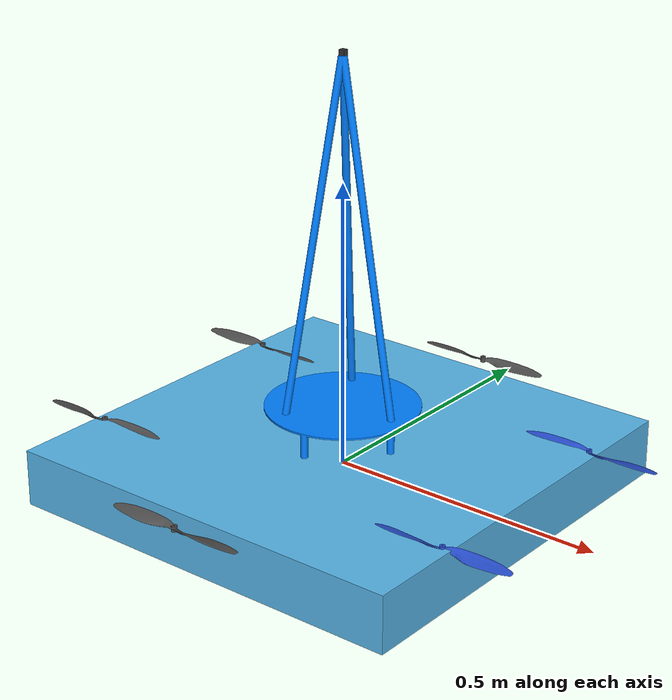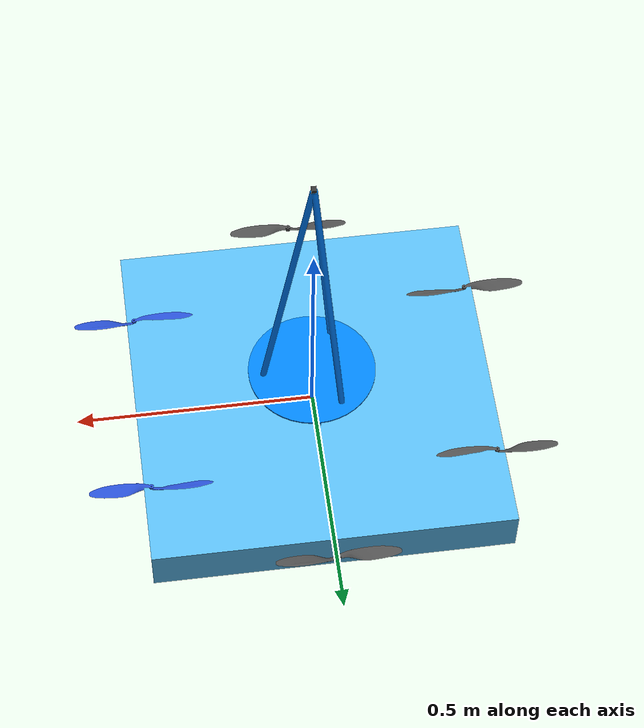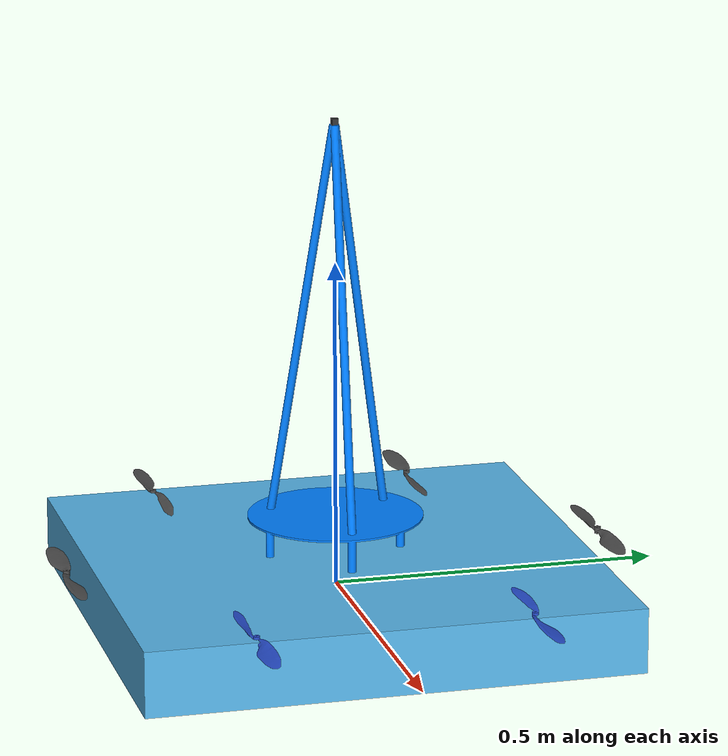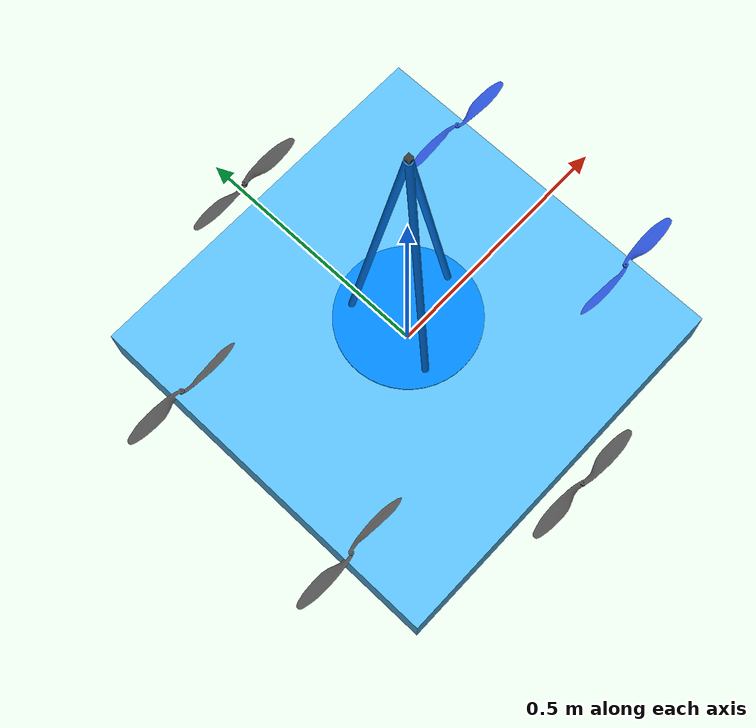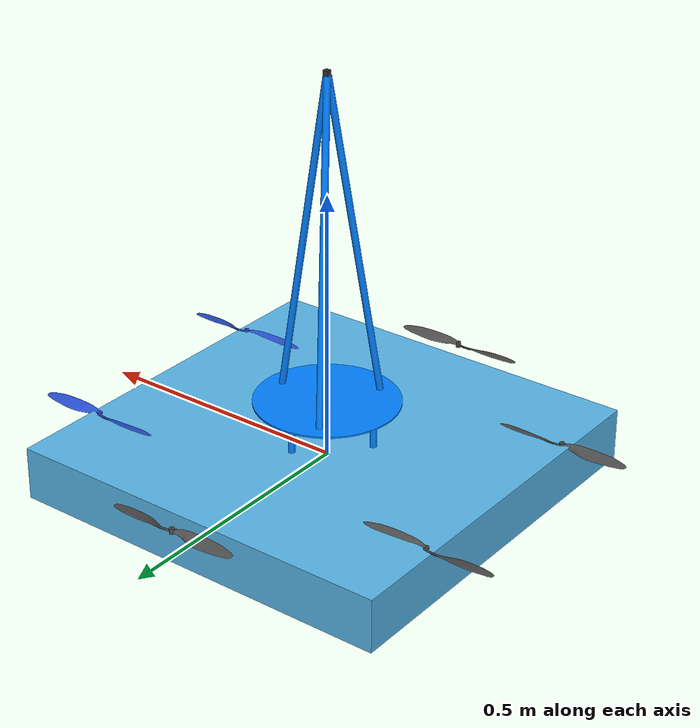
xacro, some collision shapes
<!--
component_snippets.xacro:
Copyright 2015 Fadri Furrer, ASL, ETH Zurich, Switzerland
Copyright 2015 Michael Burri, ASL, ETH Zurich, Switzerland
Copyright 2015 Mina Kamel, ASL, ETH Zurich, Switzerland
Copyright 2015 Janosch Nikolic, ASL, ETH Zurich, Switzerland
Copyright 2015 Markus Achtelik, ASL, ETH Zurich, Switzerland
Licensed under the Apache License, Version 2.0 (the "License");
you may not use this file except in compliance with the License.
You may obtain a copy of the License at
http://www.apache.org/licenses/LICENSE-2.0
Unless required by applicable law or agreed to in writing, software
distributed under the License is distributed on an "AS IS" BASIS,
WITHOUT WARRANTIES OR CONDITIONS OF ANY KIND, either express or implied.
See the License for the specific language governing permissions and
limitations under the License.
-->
<?xml version="1.0"?>

<robot name="carrier" xmlns:xacro="http://ros.org/wiki/xacro">
  <!-- Properties that can be assigned at build time as arguments.
  Is there a reason not to make all properties arguments?
  -->
  <xacro:arg name='name' default='carrier' />
  <xacro:arg name='mavlink_addr' default='INADDR_ANY' />
  <xacro:arg name='mavlink_udp_port' default='14561' />
  <xacro:arg name='mavlink_tcp_port' default='4562' />
  <xacro:arg name='serial_enabled' default='false' />
  <xacro:arg name='serial_device' default='/dev/ttyACM0' />
  <xacro:arg name='baudrate' default='921600' />
  <xacro:arg name='qgc_addr' default='INADDR_ANY' />
  <xacro:arg name='qgc_udp_port' default='14550' />
  <xacro:arg name='sdk_addr' default='INADDR_ANY' />
  <xacro:arg name='sdk_udp_port' default='14540' />
  <xacro:arg name='hil_mode' default='false' />
  <xacro:arg name='hil_state_level' default='false' />
  <xacro:arg name='send_vision_estimation' default='false' />
  <xacro:arg name='send_odometry' default='false' />
  <xacro:arg name='enable_lockstep' default='true' />
  <xacro:arg name='use_tcp' default='true' />
  <xacro:arg name='vehicle_is_tailsitter' default='false' />
  <xacro:arg name='visual_material' default='DarkGrey' />
  <xacro:arg name='enable_mavlink_interface' default='true' />

  <!-- macros for gazebo plugins, sensors -->
  <xacro:include filename="$(find docking_description)/urdf/component_snippets.xacro" />

  <!-- Instantiate "mechanics" -->
  <xacro:include filename="$(find docking_description)/urdf/$(arg name).xacro" />

  <!-- Instantiate gps plugin. -->
  <xacro:gps_plugin_macro
    namespace="${namespace}"
    gps_noise="true"
    >
  </xacro:gps_plugin_macro>

  <!-- Instantiate magnetometer plugin. -->
  <xacro:magnetometer_plugin_macro
    namespace="${namespace}"
    pub_rate="20"
    noise_density="0.0004"
    random_walk="0.0000064"
    bias_correlation_time="600"
    mag_topic="/mag"
    >
  </xacro:magnetometer_plugin_macro>

  <!-- Instantiate barometer plugin. -->
  <xacro:barometer_plugin_macro
    namespace="${namespace}"
    pub_rate="10"
    baro_topic="/baro"
    >
  </xacro:barometer_plugin_macro>

  <xacro:if value="$(arg enable_mavlink_interface)">
  <!-- Instantiate mavlink telemetry interface. -->
  <xacro:mavlink_interface_macro
    namespace="${namespace}"
    imu_sub_topic="/imu"
    gps_sub_topic="/gps"
    mag_sub_topic="/mag"
    baro_sub_topic="/baro"
    mavlink_addr="$(arg mavlink_addr)"
    mavlink_udp_port="$(arg mavlink_udp_port)"
    mavlink_tcp_port="$(arg mavlink_tcp_port)"
    serial_enabled="$(arg serial_enabled)"
    serial_device="$(arg serial_device)"
    baudrate="$(arg baudrate)"
    qgc_addr="$(arg qgc_addr)"
    qgc_udp_port="$(arg qgc_udp_port)"
    sdk_addr="$(arg sdk_addr)"
    sdk_udp_port="$(arg sdk_udp_port)"
    hil_mode="$(arg hil_mode)"
    hil_state_level="$(arg hil_state_level)"
    vehicle_is_tailsitter="$(arg vehicle_is_tailsitter)"
    send_vision_estimation="$(arg send_vision_estimation)"
    send_odometry="$(arg send_odometry)"
    enable_lockstep="$(arg enable_lockstep)"
    use_tcp="$(arg use_tcp)"
    >
  </xacro:mavlink_interface_macro>
  </xacro:if>

  <!-- Mount an ADIS16448 IMU. -->
  <xacro:imu_plugin_macro
    namespace="${namespace}"
    imu_suffix=""
    parent_link="${namespace}/base_link"
    imu_topic="/imu"
    mass_imu_sensor="0.015"
    gyroscope_noise_density="0.0003394"
    gyroscopoe_random_walk="0.000038785"
    gyroscope_bias_correlation_time="1000.0"
    gyroscope_turn_on_bias_sigma="0.0087"
    accelerometer_noise_density="0.004"
    accelerometer_random_walk="0.006"
    accelerometer_bias_correlation_time="300.0"
    accelerometer_turn_on_bias_sigma="0.1960"
  >
    <inertia ixx="0.00001" ixy="0.0" ixz="0.0" iyy="0.00001" iyz="0.0" izz="0.00001" />
    <origin xyz="0 0 0" rpy="0 0 0" />
  </xacro:imu_plugin_macro>

</robot>

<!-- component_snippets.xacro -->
<robot xmlns:xacro="http://ros.org/wiki/xacro">
  <!-- Macro to add logging to a bag file. -->
  <xacro:macro name="bag_plugin_macro"
    params="namespace bag_file rotor_velocity_slowdown_sim">
    <gazebo>
      <plugin filename="librotors_gazebo_bag_plugin.so" name="rosbag">
        <robotNamespace>${namespace}</robotNamespace>
        <bagFileName>${bag_file}</bagFileName>
        <linkName>base_link</linkName>
        <frameId>base_link</frameId>
        <commandAttitudeThrustSubTopic>command/attitude</commandAttitudeThrustSubTopic>
        <commandAttitudeThrustPubTopic>command/attitude</commandAttitudeThrustPubTopic>
        <rotorVelocitySlowdownSim>${rotor_velocity_slowdown_sim}</rotorVelocitySlowdownSim>
      </plugin>
    </gazebo>
  </xacro:macro>

  <!-- Macro to add a camera. -->
  <xacro:macro name="camera_macro"
    params="namespace parent_link camera_suffix frame_rate
      horizontal_fov image_width image_height image_format min_distance
      max_distance noise_mean noise_stddev enable_visual *cylinder *origin">
    <link name="${namespace}/camera_${camera_suffix}_link">
      <collision>
        <origin xyz="0 0 0" rpy="0 0 0" />
        <geometry>
          <xacro:insert_block name="cylinder" />
        </geometry>
      </collision>
      <xacro:if value="${enable_visual}">
        <visual>
          <origin xyz="0 0 0" rpy="0 1.57079632679 0" />
          <geometry>
            <xacro:insert_block name="cylinder" />
          </geometry>
          <material name="red" />
        </visual>
      </xacro:if>
      <inertial>
        <mass value="1e-5" />
        <origin xyz="0 0 0" rpy="0 0 0" />
        <inertia ixx="1e-6" ixy="0" ixz="0" iyy="1e-6" iyz="0" izz="1e-6" />
      </inertial>
    </link>
    <joint name="${namespace}/camera_${camera_suffix}_joint" type="fixed">
      <xacro:insert_block name="origin" />
      <parent link="${parent_link}" />
      <child link="${namespace}/camera_${camera_suffix}_link" />
    </joint>
    <gazebo reference="${namespace}/camera_${camera_suffix}_link">
      <sensor type="camera" name="${namespace}_camera_${camera_suffix}">
        <update_rate>${frame_rate}</update_rate>
        <camera name="head">
          <horizontal_fov>${horizontal_fov}</horizontal_fov>
          <image>
            <width>${image_width}</width>
            <height>${image_height}</height>
            <format>${image_format}</format>
          </image>
          <clip>
            <near>${min_distance}</near>
            <far>${max_distance}</far>
          </clip>
          <noise>
            <type>gaussian</type>
            <!-- Noise is sampled independently per pixel on each frame.
                 That pixel's noise value is added to each of its color
                 channels, which at that point lie in the range [0,1]. -->
            <mean>${noise_mean}</mean>
            <stddev>${noise_stddev}</stddev>
          </noise>
        </camera>
        <plugin name="${namespace}_camera_${camera_suffix}_controller" filename="libgazebo_ros_camera.so">
          <robotNamespace>${namespace}</robotNamespace>
          <alwaysOn>true</alwaysOn>
          <updateRate>${frame_rate}</updateRate>
          <cameraName>camera_${camera_suffix}</cameraName>
          <imageTopicName>image_raw</imageTopicName>
          <cameraInfoTopicName>camera_info</cameraInfoTopicName>
          <frameName>camera_${camera_suffix}_link</frameName>
          <hackBaseline>0.0</hackBaseline>
          <distortionK1>0.0</distortionK1>
          <distortionK2>0.0</distortionK2>
          <distortionK3>0.0</distortionK3>
          <distortionT1>0.0</distortionT1>
          <distortionT2>0.0</distortionT2>
        </plugin>
      </sensor>
    </gazebo>
  </xacro:macro>

  <!-- Macro to add the controller interface. -->
  <xacro:macro name="controller_plugin_macro" params="namespace imu_sub_topic">
    <gazebo>
      <plugin name="controller_interface" filename="libgazebo_controller_interface.so">
        <robotNamespace>${namespace}</robotNamespace>
        <commandAttitudeThrustSubTopic>/command/attitude</commandAttitudeThrustSubTopic>
        <commandRateThrustSubTopic>/command/rate</commandRateThrustSubTopic>
        <commandMotorSpeedSubTopic>/command/motor_speed</commandMotorSpeedSubTopic>
        <imuSubTopic>/${imu_sub_topic}</imuSubTopic>
        <motorSpeedCommandPubTopic>/gazebo/command/motor_speed</motorSpeedCommandPubTopic>
      </plugin>
    </gazebo>
  </xacro:macro>

  <!-- Macro to add the gps_plugin. -->
  <xacro:macro name="gps_plugin_macro" params="namespace gps_noise">
    <gazebo>
      <plugin name="gps_plugin" filename="libgazebo_gps_plugin.so">
        <robotNamespace>${namespace}</robotNamespace>
        <gpsNoise>${gps_noise}</gpsNoise>
      </plugin>
    </gazebo>
  </xacro:macro>

  <!-- Macro to add the magnetometer_plugin. -->
  <xacro:macro name="magnetometer_plugin_macro" params="namespace pub_rate noise_density random_walk bias_correlation_time mag_topic">
    <gazebo>
      <plugin name="magnetometer_plugin" filename="libgazebo_magnetometer_plugin.so">
        <robotNamespace>${namespace}</robotNamespace>
        <pubRate>${pub_rate}</pubRate>
        <noiseDensity>${noise_density}</noiseDensity>
        <randomWalk>${random_walk}</randomWalk>
        <biasCorrelationTime>${bias_correlation_time}</biasCorrelationTime>
        <magTopic>${mag_topic}</magTopic>
      </plugin>
    </gazebo>
  </xacro:macro>

  <!-- Macro to add the barometer_plugin. -->
  <xacro:macro name="barometer_plugin_macro" params="namespace pub_rate baro_topic">
    <gazebo>
      <plugin name="barometer_plugin" filename="libgazebo_barometer_plugin.so">
        <robotNamespace>${namespace}</robotNamespace>
        <pubRate>${pub_rate}</pubRate>
        <baroTopic>${baro_topic}</baroTopic>
      </plugin>
    </gazebo>
  </xacro:macro>

  <!-- Macro to add the mavlink interface. -->
  <xacro:macro name="mavlink_interface_macro" params="namespace imu_sub_topic gps_sub_topic mag_sub_topic baro_sub_topic mavlink_addr mavlink_udp_port mavlink_tcp_port serial_enabled serial_device baudrate qgc_addr qgc_udp_port sdk_addr sdk_udp_port hil_mode hil_state_level vehicle_is_tailsitter send_vision_estimation send_odometry enable_lockstep use_tcp">
    <gazebo>
      <plugin name="mavlink_interface" filename="libgazebo_mavlink_interface.so">
        <robotNamespace>${namespace}</robotNamespace>
        <imuSubTopic>${imu_sub_topic}</imuSubTopic>
        <gpsSubTopic>${gps_sub_topic}</gpsSubTopic>
        <magSubTopic>${mag_sub_topic}</magSubTopic>
        <baroSubTopic>${baro_sub_topic}</baroSubTopic>
        <mavlink_addr>$(arg mavlink_addr)</mavlink_addr>
        <mavlink_udp_port>$(arg mavlink_udp_port)</mavlink_udp_port>
        <mavlink_tcp_port>$(arg mavlink_tcp_port)</mavlink_tcp_port>
        <serialEnabled>$(arg serial_enabled)</serialEnabled>
        <serialDevice>$(arg serial_device)</serialDevice>
        <baudRate>$(arg baudrate)</baudRate>
        <qgc_addr>$(arg qgc_addr)</qgc_addr>
        <qgc_udp_port>$(arg qgc_udp_port)</qgc_udp_port>
        <sdk_addr>$(arg sdk_addr)</sdk_addr>
        <sdk_udp_port>$(arg sdk_udp_port)</sdk_udp_port>
        <hil_mode>$(arg hil_mode)</hil_mode>
        <hil_state_level>$(arg hil_state_level)</hil_state_level>
        <vehicle_is_tailsitter>$(arg vehicle_is_tailsitter)</vehicle_is_tailsitter>
        <send_vision_estimation>$(arg send_vision_estimation)</send_vision_estimation>
        <send_odometry>$(arg send_odometry)</send_odometry>
        <enable_lockstep>$(arg enable_lockstep)</enable_lockstep>
        <use_tcp>$(arg use_tcp)</use_tcp>
        <motorSpeedCommandPubTopic>/gazebo/command/motor_speed</motorSpeedCommandPubTopic>
        <control_channels>
          <channel name="rotor1">
            <input_index>0</input_index>
            <input_offset>0</input_offset>
            <input_scaling>1000</input_scaling>
            <zero_position_disarmed>0</zero_position_disarmed>
            <zero_position_armed>100</zero_position_armed>
            <joint_control_type>velocity</joint_control_type>
          </channel>
          <channel name="rotor2">
            <input_index>1</input_index>
            <input_offset>0</input_offset>
            <input_scaling>1000</input_scaling>
            <zero_position_disarmed>0</zero_position_disarmed>
            <zero_position_armed>100</zero_position_armed>
            <joint_control_type>velocity</joint_control_type>
          </channel>
          <channel name="rotor3">
            <input_index>2</input_index>
            <input_offset>0</input_offset>
            <input_scaling>1000</input_scaling>
            <zero_position_disarmed>0</zero_position_disarmed>
            <zero_position_armed>100</zero_position_armed>
            <joint_control_type>velocity</joint_control_type>
          </channel>
          <channel name="rotor4">
            <input_index>3</input_index>
            <input_offset>0</input_offset>
            <input_scaling>1000</input_scaling>
            <zero_position_disarmed>0</zero_position_disarmed>
            <zero_position_armed>100</zero_position_armed>
            <joint_control_type>velocity</joint_control_type>
          </channel>
          <channel name="rotor5">
            <input_index>4</input_index>
            <input_offset>0</input_offset>
            <input_scaling>1000</input_scaling>
            <zero_position_disarmed>0</zero_position_disarmed>
            <zero_position_armed>100</zero_position_armed>
            <joint_control_type>velocity</joint_control_type>
          </channel>
          <channel name="rotor6">
            <input_index>5</input_index>
            <input_offset>0</input_offset>
            <input_scaling>1000</input_scaling>
            <zero_position_disarmed>0</zero_position_disarmed>
            <zero_position_armed>100</zero_position_armed>
            <joint_control_type>velocity</joint_control_type>
          </channel>
          <channel name="rotor7">
            <input_index>6</input_index>
            <input_offset>1</input_offset>
            <input_scaling>324.6</input_scaling>
            <zero_position_disarmed>0</zero_position_disarmed>
            <zero_position_armed>0</zero_position_armed>
            <joint_control_type>velocity</joint_control_type>
            <joint_control_pid>
              <p>0.1</p>
              <i>0</i>
              <d>0</d>
              <iMax>0.0</iMax>
              <iMin>0.0</iMin>
              <cmdMax>2</cmdMax>
              <cmdMin>-2</cmdMin>
            </joint_control_pid>
            <joint_name>zephyr_delta_wing::propeller_joint</joint_name>
          </channel>
          <channel name="rotor8">
            <input_index>7</input_index>
            <input_offset>0</input_offset>
            <!-- joint limits [-0.524, 0.524] -->
            <input_scaling>0.524</input_scaling>
            <zero_position_disarmed>0</zero_position_disarmed>
            <zero_position_armed>0</zero_position_armed>
            <joint_control_type>position</joint_control_type>
            <joint_name>zephyr_delta_wing::flap_left_joint</joint_name>
            <joint_control_pid>
              <p>10.0</p>
              <i>0</i>
              <d>0</d>
              <iMax>0</iMax>
              <iMin>0</iMin>
              <cmdMax>20</cmdMax>
              <cmdMin>-20</cmdMin>
            </joint_control_pid>
          </channel>
          <channel name="rotor9">
            <input_index>8</input_index>
            <input_offset>0</input_offset>
            <!-- joint limits [-0.524, 0.524] -->
            <input_scaling>0.524</input_scaling>
            <zero_position_disarmed>0</zero_position_disarmed>
            <zero_position_armed>0</zero_position_armed>
            <joint_control_type>position</joint_control_type>
            <joint_name>zephyr_delta_wing::flap_right_joint</joint_name>
            <joint_control_pid>
              <p>10.0</p>
              <i>0</i>
              <d>0</d>
              <iMax>0</iMax>
              <iMin>0</iMin>
              <cmdMax>20</cmdMax>
              <cmdMin>-20</cmdMin>
            </joint_control_pid>
          </channel>
          <channel name="rotor10">
            <input_index>9</input_index>
            <input_offset>0</input_offset>
            <input_scaling>0.524</input_scaling>
            <zero_position_disarmed>0</zero_position_disarmed>
            <zero_position_armed>0</zero_position_armed>
            <joint_control_type>position</joint_control_type>
          </channel>
        </control_channels>
      </plugin>
    </gazebo>
  </xacro:macro>

  <!-- Macro to add an IMU. -->
  <xacro:macro name="imu_plugin_macro"
    params="namespace imu_suffix parent_link imu_topic
      mass_imu_sensor gyroscope_noise_density gyroscopoe_random_walk
      gyroscope_bias_correlation_time gyroscope_turn_on_bias_sigma
      accelerometer_noise_density accelerometer_random_walk
      accelerometer_bias_correlation_time accelerometer_turn_on_bias_sigma
      *inertia *origin">
    <!-- IMU link -->
    <link name="${namespace}/imu${imu_suffix}_link">
      <inertial>
        <xacro:insert_block name="inertia" />
        <mass value="${mass_imu_sensor}" />  <!-- [kg] -->
        <origin xyz="0 0 0" rpy="0 0 0" />
      </inertial>
    </link>
    <!-- IMU joint -->
    <joint name="${namespace}/imu${imu_suffix}_joint" type="revolute">
      <xacro:insert_block name="origin" />
      <parent link="${parent_link}" />
      <child link="${namespace}/imu${imu_suffix}_link" />
      <limit upper="0" lower="0" effort="0" velocity="0" />
    </joint>
    <gazebo>
      <plugin filename="libgazebo_imu_plugin.so" name="rotors_gazebo_imu${imu_suffix}_plugin">
      <!-- A good description of the IMU parameters can be found in the kalibr documentation:
           https://github.com/ethz-asl/kalibr/wiki/IMU-Noise-Model-and-Intrinsics -->
        <robotNamespace>${namespace}</robotNamespace> <!-- (string, required): ros namespace in which the messages are published -->
        <linkName>${namespace}/imu${imu_suffix}_link</linkName> <!-- (string, required): name of the body which holds the IMU sensor -->
        <imuTopic>${imu_topic}</imuTopic> <!-- (string): name of the sensor output topic and prefix of service names (defaults to imu) -->
        <gyroscopeNoiseDensity>${gyroscope_noise_density}</gyroscopeNoiseDensity> <!-- Gyroscope noise density (two-sided spectrum) [rad/s/sqrt(Hz)] -->
        <gyroscopeRandomWalk>${gyroscopoe_random_walk}</gyroscopeRandomWalk> <!-- Gyroscope bias random walk [rad/s/s/sqrt(Hz)] -->
        <gyroscopeBiasCorrelationTime>${gyroscope_bias_correlation_time}</gyroscopeBiasCorrelationTime> <!-- Gyroscope bias correlation time constant [s] -->
        <gyroscopeTurnOnBiasSigma>${gyroscope_turn_on_bias_sigma}</gyroscopeTurnOnBiasSigma> <!-- Gyroscope turn on bias standard deviation [rad/s] -->
        <accelerometerNoiseDensity>${accelerometer_noise_density}</accelerometerNoiseDensity> <!-- Accelerometer noise density (two-sided spectrum) [m/s^2/sqrt(Hz)] -->
        <accelerometerRandomWalk>${accelerometer_random_walk}</accelerometerRandomWalk> <!-- Accelerometer bias random walk. [m/s^2/s/sqrt(Hz)] -->
        <accelerometerBiasCorrelationTime>${accelerometer_bias_correlation_time}</accelerometerBiasCorrelationTime> <!-- Accelerometer bias correlation time constant [s] -->
        <accelerometerTurnOnBiasSigma>${accelerometer_turn_on_bias_sigma}</accelerometerTurnOnBiasSigma> <!-- Accelerometer turn on bias standard deviation [m/s^2] -->
      </plugin>
    </gazebo>
  </xacro:macro>

<!-- Macro to add a generic odometry sensor. -->
  <xacro:macro name="odometry_plugin_macro"
    params="
      namespace odometry_sensor_suffix parent_link pose_topic pose_with_covariance_topic
      position_topic transform_topic odometry_topic parent_frame_id
      mass_odometry_sensor measurement_divisor measurement_delay unknown_delay
      noise_normal_position noise_normal_quaternion noise_normal_linear_velocity
      noise_normal_angular_velocity noise_uniform_position
      noise_uniform_quaternion noise_uniform_linear_velocity
      noise_uniform_angular_velocity enable_odometry_map odometry_map
      image_scale *inertia *origin">
    <!-- odometry link -->
    <link name="${namespace}/odometry_sensor${odometry_sensor_suffix}_link">
      <inertial>
        <xacro:insert_block name="inertia" />
        <mass value="${mass_odometry_sensor}" />  <!-- [kg] -->
      </inertial>
    </link>
    <!-- odometry joint -->
    <joint name="${namespace}/odometry_sensor${odometry_sensor_suffix}_joint" type="revolute">
      <parent link="${parent_link}" />
      <xacro:insert_block name="origin" />
      <child link="${namespace}/odometry_sensor${odometry_sensor_suffix}_link" />
      <limit upper="0" lower="0" effort="0" velocity="0" />
    </joint>
    <gazebo>
      <plugin filename="librotors_gazebo_odometry_plugin.so" name="odometry_sensor${odometry_sensor_suffix}">
        <linkName>${namespace}/odometry_sensor${odometry_sensor_suffix}_link</linkName>
        <robotNamespace>${namespace}</robotNamespace>
        <poseTopic>${pose_topic}</poseTopic>
        <poseWithCovarianceTopic>${pose_with_covariance_topic}</poseWithCovarianceTopic>
        <positionTopic>${position_topic}</positionTopic>
        <transformTopic>${transform_topic}</transformTopic>
        <odometryTopic>${odometry_topic}</odometryTopic>
        <parentFrameId>${parent_frame_id}</parentFrameId>  <!-- Use the scoped link name here. e.g. Model::link. -->
        <measurementDivisor>${measurement_divisor}</measurementDivisor> <!-- only every (seq % measurementDivisor) == 0 measurement is published [int] -->
        <measurementDelay>${measurement_delay}</measurementDelay> <!-- time that measurement gets held back before it's published in [simulation cycles (int)] -->
        <unknownDelay>${unknown_delay}</unknownDelay> <!-- additional delay, that just gets added to the timestamp [s] -->
        <noiseNormalPosition>${noise_normal_position}</noiseNormalPosition> <!-- standard deviation of additive white gaussian noise [m] -->
        <noiseNormalQuaternion>${noise_normal_quaternion}</noiseNormalQuaternion> <!-- standard deviation white gaussian noise [rad]: q_m = q*quaternionFromSmallAngleApproximation(noiseNormalQ) -->
        <noiseNormalLinearVelocity>${noise_normal_linear_velocity}</noiseNormalLinearVelocity> <!-- standard deviation of additive white gaussian noise [m/s] -->
        <noiseNormalAngularVelocity>${noise_normal_angular_velocity}</noiseNormalAngularVelocity> <!-- standard deviation of additive white gaussian noise [rad/s] -->
        <noiseUniformPosition>${noise_uniform_position}</noiseUniformPosition> <!-- symmetric bounds of uniform noise [m] -->
        <noiseUniformQuaternion>${noise_uniform_quaternion}</noiseUniformQuaternion> <!-- symmetric bounds of uniform noise [rad], computation see above -->
        <noiseUniformLinearVelocity>${noise_uniform_linear_velocity}</noiseUniformLinearVelocity>  <!-- symmetric bounds of uniform noise [m/s] -->
        <noiseUniformAngularVelocity>${noise_uniform_angular_velocity}</noiseUniformAngularVelocity>  <!-- symmetric bounds of uniform noise [rad/s] -->
        <xacro:if value="${enable_odometry_map}">
          <covarianceImage>package://rotors_gazebo/resource/${odometry_map}</covarianceImage>
          <covarianceImageScale>${image_scale}</covarianceImageScale>
        </xacro:if>
      </plugin>
    </gazebo>
  </xacro:macro>

  <!-- Macro to add the wind plugin. -->
  <xacro:macro name="wind_plugin_macro"
    params="namespace xyz_offset wind_direction wind_force_mean
      wind_gust_direction wind_gust_duration wind_gust_start
      wind_gust_force_mean">
    <gazebo>
      <plugin filename="libgazebo_wind_plugin.so" name="wind_plugin">
        <frameId>base_link</frameId>
        <linkName>base_link</linkName>
        <robotNamespace>${namespace}</robotNamespace>
        <xyzOffset>${xyz_offset}</xyzOffset>
        <windDirection>${wind_direction}</windDirection>
        <windForceMean>${wind_force_mean}</windForceMean>
        <windGustDirection>${wind_gust_direction}</windGustDirection>
        <windGustDuration>${wind_gust_duration}</windGustDuration>
        <windGustStart>${wind_gust_start}</windGustStart>
        <windGustForceMean>${wind_gust_force_mean}</windGustForceMean>
      </plugin>
    </gazebo>
  </xacro:macro>

  <!-- VI sensor macros -->
  <!-- Macro to add a VI-sensor camera. -->
  <xacro:macro name="vi_sensor_camera_macro"
    params="namespace parent_link camera_suffix frame_rate *origin">
    <xacro:camera_macro
      namespace="${namespace}"
      parent_link="${parent_link}"
      camera_suffix="${camera_suffix}"
      frame_rate="${frame_rate}"
      horizontal_fov="1.3962634"
      image_width="752"
      image_height="480"
      image_format="L8"
      min_distance="0.02"
      max_distance="30"
      noise_mean="0.0"
      noise_stddev="0.007"
      enable_visual="false">
      <cylinder length="0.01" radius="0.007" />
      <xacro:insert_block name="origin" />
    </xacro:camera_macro>
  </xacro:macro>

  <!-- Macro to add a depth camera on the VI-sensor. -->
  <xacro:macro name="vi_sensor_depth_macro"
    params="namespace parent_link camera_suffix frame_rate *origin">
    <link name="${namespace}/camera_${camera_suffix}_link">
      <collision>
        <origin xyz="0 0 0" rpy="0 0 0" />
        <geometry>
          <cylinder length="0.01" radius="0.007" />
        </geometry>
      </collision>
      <inertial>
        <mass value="1e-5" />
        <origin xyz="0 0 0" rpy="0 0 0" />
        <inertia ixx="1e-6" ixy="0" ixz="0" iyy="1e-6" iyz="0" izz="1e-6" />
      </inertial>
    </link>
    <joint name="${namespace}/camera_${camera_suffix}_joint" type="fixed">
      <xacro:insert_block name="origin" />
      <parent link="${parent_link}" />
      <child link="${namespace}/camera_${camera_suffix}_link" />
      <limit upper="0" lower="0" effort="0" velocity="0" />
    </joint>
    <!-- Optical center of camera -->
    <link name="${namespace}/camera_${camera_suffix}_optical_center_link" />
    <joint name="${namespace}/camera_${camera_suffix}_optical_center_joint" type="fixed">
      <origin xyz="0 0 0" rpy="${-PI/2} 0 ${-PI/2}" />
      <parent link="${namespace}/camera_${camera_suffix}_link" />
      <child link="${namespace}/camera_${camera_suffix}_optical_center_link" />
      <limit upper="0" lower="0" effort="0" velocity="0" />
    </joint>
    <gazebo reference="${namespace}/camera_${camera_suffix}_link">
      <sensor type="depth" name="${namespace}_camera_{camera_suffix}">
        <always_on>true</always_on>
        <update_rate>${frame_rate}</update_rate>
        <camera>
          <horizontal_fov>2</horizontal_fov>
          <image>
            <format>L8</format>
            <width>640</width>
            <height>480</height>
          </image>
          <clip>
            <near>0.01</near>
            <far>100</far>
          </clip>
        </camera>
        <plugin name="${namespace}_camera_{camera_suffix}" filename="libgazebo_ros_openni_kinect.so">
          <robotNamespace>${namespace}</robotNamespace>
          <alwaysOn>true</alwaysOn>
          <baseline>0.11</baseline>
          <updateRate>${frame_rate}</updateRate>
          <cameraName>camera_${camera_suffix}</cameraName>
          <imageTopicName>camera/image_raw</imageTopicName>
          <cameraInfoTopicName>camera/camera_info</cameraInfoTopicName>
          <depthImageTopicName>depth/disparity</depthImageTopicName>
          <depthImageCameraInfoTopicName>depth/camera_info</depthImageCameraInfoTopicName>
          <pointCloudTopicName>depth/points</pointCloudTopicName>
          <frameName>camera_${camera_suffix}_optical_center_link</frameName>
          <pointCloudCutoff>0.5</pointCloudCutoff>
          <distortionK1>0.0</distortionK1>
          <distortionK2>0.0</distortionK2>
          <distortionK3>0.0</distortionK3>
          <distortionT1>0.0</distortionT1>
          <distortionT2>0.0</distortionT2>
        </plugin>
      </sensor>
    </gazebo>
  </xacro:macro>

  <!-- VI-Sensor Macro -->
  <xacro:macro name="vi_sensor_macro" params="namespace parent_link *origin">
    <!-- Vi Sensor Link -->
    <link name="${namespace}/vi_sensor_link">
      <collision>
        <origin xyz="0 0 0" rpy="0 0 0" />
        <geometry>
          <box size="0.03 0.133 0.057" />
        </geometry>
      </collision>

      <visual>
        <origin xyz="0 0 0" rpy="0 0 0" />
        <geometry>
          <mesh filename="package://rotors_description/meshes/vi_sensor.dae" scale="1 1 1" />
        </geometry>
      </visual>

      <inertial>
        <mass value="0.13" />
        <origin xyz="0 0 0" rpy="0 0 0" />
        <inertia ixx="1e-6" ixy="0" ixz="0" iyy="1e-6" iyz="0" izz="1e-6" />
      </inertial>
    </link>
    <joint name="{namespace}_vi_sensor_joint" type="fixed">
      <xacro:insert_block name="origin" />
      <parent link="${parent_link}" />
      <child link="${namespace}/vi_sensor_link" />
    </joint>
    <!-- Cameras -->
    <xacro:if value="$(arg enable_cameras)">
      <!-- Left Camera -->
      <xacro:vi_sensor_camera_macro
        namespace="${namespace}" parent_link="${namespace}/vi_sensor_link"
        camera_suffix="left" frame_rate="30.0">
        <origin xyz="0.015 0.055 0.0065" rpy="0 0 0" />
      </xacro:vi_sensor_camera_macro>
      <!-- Right Camera -->
      <xacro:vi_sensor_camera_macro namespace="${namespace}"
        parent_link="${namespace}/vi_sensor_link"
        camera_suffix="right" frame_rate="30.0">
        <origin xyz="0.015 -0.055 0.0065" rpy="0 0 0" />
      </xacro:vi_sensor_camera_macro>
    </xacro:if>

    <!-- Depth Sensor -->
    <xacro:if value="$(arg enable_depth)">
      <xacro:vi_sensor_depth_macro
        namespace="${namespace}" parent_link="${namespace}/vi_sensor_link"
        camera_suffix="depth" frame_rate="30.0">
        <origin xyz="0.015 0.055 0.0065" rpy="0 0 0" />
      </xacro:vi_sensor_depth_macro>
    </xacro:if>

    <!-- Groundtruth -->
    <xacro:if value="$(arg enable_ground_truth)">
      <!-- Odometry Sensor -->
      <xacro:odometry_plugin_macro
        namespace="${namespace}/ground_truth"
        odometry_sensor_suffix=""
        parent_link="${namespace}/vi_sensor_link"
        pose_topic="pose"
        pose_with_covariance_topic="pose_with_covariance"
        position_topic="position"
        transform_topic="transform"
        odometry_topic="odometry"
        parent_frame_id="world"
        mass_odometry_sensor="0.00001"
        measurement_divisor="1"
        measurement_delay="0"
        unknown_delay="0.0"
        noise_normal_position="0 0 0"
        noise_normal_quaternion="0 0 0"
        noise_normal_linear_velocity="0 0 0"
        noise_normal_angular_velocity="0 0 0"
        noise_uniform_position="0 0 0"
        noise_uniform_quaternion="0 0 0"
        noise_uniform_linear_velocity="0 0 0"
        noise_uniform_angular_velocity="0 0 0"
        enable_odometry_map="false"
        odometry_map=""
        image_scale="">
        <inertia ixx="0.00001" ixy="0.0" ixz="0.0" iyy="0.00001" iyz="0.0" izz="0.00001" /> <!-- [kg.m^2] [kg.m^2] [kg.m^2] [kg.m^2] [kg.m^2] [kg.m^2] -->
        <origin xyz="0.0 0.0 0.0" rpy="0.0 0.0 0.0" />
      </xacro:odometry_plugin_macro>
    </xacro:if>

    <!-- ADIS16448 IMU. -->
    <xacro:imu_plugin_macro
      namespace="${namespace}"
      imu_suffix=""
      parent_link="${namespace}/vi_sensor_link"
      imu_topic="/imu"
      mass_imu_sensor="0.015"
      gyroscope_noise_density="0.0003394"
      gyroscopoe_random_walk="0.000038785"
      gyroscope_bias_correlation_time="1000.0"
      gyroscope_turn_on_bias_sigma="0.0087"
      accelerometer_noise_density="0.004"
      accelerometer_random_walk="0.006"
      accelerometer_bias_correlation_time="300.0"
      accelerometer_turn_on_bias_sigma="0.1960">
      <inertia ixx="0.00001" ixy="0.0" ixz="0.0" iyy="0.00001" iyz="0.0" izz="0.00001" />
      <origin xyz="0.015 0 0.0113" rpy="0 0 0" />
    </xacro:imu_plugin_macro>
  </xacro:macro>

</robot>

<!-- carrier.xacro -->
<robot name="carrier" xmlns:xacro="http://ros.org/wiki/xacro">
  <!-- Properties -->
  <xacro:property name="namespace" value="carrier" />
  <xacro:property name="rotor_velocity_slowdown_sim" value="20" />
  <xacro:property name="mesh_file" value="model://meshes/carrier.dae"/>
  <xacro:property name="use_collision_mesh" value="false"/>
  <xacro:property name="use_friction" value="true"/>
  <xacro:property name="collision_mesh_file" value="model://meshes/carrier.dae"/>
  <xacro:property name="mesh_scale" value="1 1 1"/>
  <xacro:property name="mass" value="2.02" /> <!-- [kg] -->
  <xacro:property name="body_width" value="0.75" />
  <xacro:property name="body_height" value="0.1" />
  <xacro:property name="mass_rotor" value="0.005" /> <!-- [kg] -->
  <xacro:property name="arm_length_y_rl" value="0.41499663" />
  <xacro:property name="arm_length_y_fb" value="0.20749832" />
  <xacro:property name="arm_length_x" value="0.35939762" />
  <xacro:property name="rotor_offset_top" value="0.05" />
  <xacro:property name="radius_rotor" value="0.128" />
  <xacro:property name="motor_constant" value="8.54858e-06" /> <!-- [kg.m/s^2] -->
  <xacro:property name="moment_constant" value="0.06" />
  <xacro:property name="time_constant_up" value="0.0125" />
  <xacro:property name="time_constant_down" value="0.025" />
  <xacro:property name="max_rot_velocity" value="1500" /> <!-- [rad/s] -->
  <xacro:property name="rotor_drag_coefficient" value="8.06428e-04" />
  <xacro:property name="rolling_moment_coefficient" value="0.000001" />
  <xacro:property name="color" value="$(arg visual_material)" />

  <!-- Property Blocks -->
  <xacro:property name="body_inertia">
    <inertia ixx="0.201" ixy="0.0" ixz="0.0" iyy="0.205" iyz="0.0" izz="0.40" /> <!-- [kg.m^2] [kg.m^2] [kg.m^2] [kg.m^2] [kg.m^2] [kg.m^2] -->
  </xacro:property>

  <!-- inertia of a single rotor, assuming it is a cuboid. Height=3mm, width=15mm -->
  <xacro:property name="rotor_inertia">
    <inertia
    ixx="${1/12 * mass_rotor * (0.015 * 0.015 + 0.003 * 0.003) * rotor_velocity_slowdown_sim}"
    iyy="${1/12 * mass_rotor * (4 * radius_rotor * radius_rotor + 0.003 * 0.003) * rotor_velocity_slowdown_sim}"
    izz="${1/12 * mass_rotor * (4 * radius_rotor * radius_rotor + 0.015 * 0.015) * rotor_velocity_slowdown_sim}"
    ixy="0.0" ixz="0.0"  iyz="0.0" /> <!-- [kg.m^2] [kg.m^2] [kg.m^2] [kg.m^2] [kg.m^2] [kg.m^2] -->
  </xacro:property>

  <!-- Included URDF Files -->
  <xacro:include filename="$(find docking_description)/urdf/multirotor_base.xacro" />

  <!-- Instantiate multirotor_base_macro once -->
  <xacro:multirotor_base_macro
    robot_namespace="${namespace}"
    mass="${mass}"
    body_width="${body_width}"
    body_height="${body_height}"
    mesh_file="${mesh_file}"
    mesh_scale="${mesh_scale}"
    color="${color}"
    >
    <xacro:insert_block name="body_inertia" />
  </xacro:multirotor_base_macro>

  <!-- Instantiate docking base -->
  <!-- Xacro properties -->
  <xacro:property name="len" value="0.695" />
  <xacro:property name="cam" value="0.01" />

  <!-- Docker link -->
  <link name="${namespace}/docker_link">
    <visual>
      <origin xyz="0 0 0.012" rpy="0 0 0" />
      <geometry>
        <mesh filename="model://meshes/base_visual.dae" scale="1 1 1" />
      </geometry>
      <material name="blue">
        <color rgba="0 0.5 1 1"/>
      </material>
    </visual>
    <!-- Base collision, mass and inertia -->
    <collision>
      <origin xyz="0 0 0.012" rpy="0 0 0" />
      <geometry>
        <mesh filename="model://meshes/base_collision.dae" scale="1 1 1" />
      </geometry>
      <surface>
        <friction>
          <ode>
            <mu>0.0</mu>
            <mu2>0.0</mu2>
          </ode>
        </friction>
      </surface>
    </collision>
  </link>

  <!-- Docker joint -->
  <joint name="${namespace}/docker_joint" type="fixed">
    <origin xyz="0 0 0.0156" rpy="0 0 0" />
    <parent link="${namespace}/base_link" />
    <child link="${namespace}/docker_link" />
  </joint>

  <gazebo reference="${namespace}/docker_link">
    <material>Gazebo/Blue</material>
  </gazebo>

  <!-- Camera -->
  <link name="${namespace}/camera_link">
    <visual>
      <origin xyz="${cam/2} -0.001 -0.002" />
      <geometry>
        <box size="${cam} ${cam} ${cam}"/>
      </geometry>
      <material name="darkgray">
        <color rgba=".2 .2 .2 1"/>
      </material>
    </visual>
    <!-- Camera collision, mass and inertia -->
    <collision>
      <origin xyz="${cam/2} -0.001 -0.002" />
      <geometry>
        <box size="${cam} ${cam} ${cam}"/>
      </geometry>
    </collision>
  </link>

  <!-- Camera joint -->
  <joint name="${namespace}/camera_joint" type="fixed">
    <parent link="${namespace}/docker_link"/>
    <child link="${namespace}/camera_link"/>
    <origin xyz="0 0 ${len}" rpy="0 -1.5708 0" />
  </joint>

  <gazebo reference="${namespace}/camera_link">
    <material>Gazebo/Black</material>
  </gazebo>

  <gazebo reference="${namespace}/camera_link">
    <material>Gazebo/Black</material>
    <sensor type="camera" name="camera">
        <update_rate>30.0</update_rate>
        <camera name="head">
        <horizontal_fov>1.3962634</horizontal_fov>
        <image>
          <width>800</width>
          <height>800</height>
          <format>R8G8B8</format>
        </image>
        <clip>
          <near>0.02</near>
          <far>300</far>
        </clip>
        <noise>
          <type>gaussian</type>
          <!-- Noise is sampled independently per pixel on each frame.
               That pixel's noise value is added to each of its color
               channels, which at that point lie in the range [0,1]. -->
          <mean>0.0</mean>
          <stddev>0.007</stddev>
        </noise>
      </camera>
      <plugin name="camera_controller" filename="libgazebo_ros_camera.so">
        <alwaysOn>true</alwaysOn>
        <updateRate>0.0</updateRate>
        <cameraName>camera</cameraName>
        <imageTopicName>image_raw</imageTopicName>
        <cameraInfoTopicName>camera_info</cameraInfoTopicName>
        <frameName>${namespace}/camera_link</frameName>
        <hackBaseline>0.0</hackBaseline>
        <distortionK1>0.0</distortionK1>
        <distortionK2>0.0</distortionK2>
        <distortionK3>0.0</distortionK3>
        <distortionT1>0.0</distortionT1>
        <distortionT2>0.0</distortionT2>
      </plugin>
    </sensor>
  </gazebo>

  <!-- Instantiate rotors -->
  <xacro:vertical_rotor
    robot_namespace="${namespace}"
    suffix="far_right"
    direction="cw"
    motor_constant="${motor_constant}"
    moment_constant="${moment_constant}"
    parent="${namespace}/base_link"
    mass_rotor="${mass_rotor}"
    radius_rotor="${radius_rotor}"
    time_constant_up="${time_constant_up}"
    time_constant_down="${time_constant_down}"
    max_rot_velocity="${max_rot_velocity}"
    motor_number="0"
    rotor_drag_coefficient="${rotor_drag_coefficient}"
    rolling_moment_coefficient="${rolling_moment_coefficient}"
    mesh="propeller"
    color="DarkGrey">
    <origin xyz="0 -${arm_length_y_rl} ${rotor_offset_top}" rpy="0 0 0" />
    <xacro:insert_block name="rotor_inertia" />
  </xacro:vertical_rotor>

  <xacro:vertical_rotor
    robot_namespace="${namespace}"
    suffix="far_left"
    direction="ccw"
    motor_constant="${motor_constant}"
    moment_constant="${moment_constant}"
    parent="${namespace}/base_link"
    mass_rotor="${mass_rotor}"
    radius_rotor="${radius_rotor}"
    time_constant_up="${time_constant_up}"
    time_constant_down="${time_constant_down}"
    max_rot_velocity="${max_rot_velocity}"
    motor_number="1"
    rotor_drag_coefficient="${rotor_drag_coefficient}"
    rolling_moment_coefficient="${rolling_moment_coefficient}"
    mesh="propeller"
    color="DarkGrey">
    <origin xyz="0 ${arm_length_y_rl} ${rotor_offset_top}" rpy="0 0 0" />
    <xacro:insert_block name="rotor_inertia" />
  </xacro:vertical_rotor>

  <xacro:vertical_rotor robot_namespace="${namespace}"
    suffix="front_left"
    direction="cw"
    motor_constant="${motor_constant}"
    moment_constant="${moment_constant}"
    parent="${namespace}/base_link"
    mass_rotor="${mass_rotor}"
    radius_rotor="${radius_rotor}"
    time_constant_up="${time_constant_up}"
    time_constant_down="${time_constant_down}"
    max_rot_velocity="${max_rot_velocity}"
    motor_number="2"
    rotor_drag_coefficient="${rotor_drag_coefficient}"
    rolling_moment_coefficient="${rolling_moment_coefficient}"
    mesh="propeller"
    color="Blue">
    <origin xyz="${arm_length_x} ${arm_length_y_fb} ${rotor_offset_top}" rpy="0 0 0" />
    <xacro:insert_block name="rotor_inertia" />
  </xacro:vertical_rotor>

  <xacro:vertical_rotor robot_namespace="${namespace}"
    suffix="back_right"
    direction="ccw"
    motor_constant="${motor_constant}"
    moment_constant="${moment_constant}"
    parent="${namespace}/base_link"
    mass_rotor="${mass_rotor}"
    radius_rotor="${radius_rotor}"
    time_constant_up="${time_constant_up}"
    time_constant_down="${time_constant_down}"
    max_rot_velocity="${max_rot_velocity}"
    motor_number="3"
    rotor_drag_coefficient="${rotor_drag_coefficient}"
    rolling_moment_coefficient="${rolling_moment_coefficient}"
    mesh="propeller"
    color="DarkGrey">
    <origin xyz="-${arm_length_x} -${arm_length_y_fb} ${rotor_offset_top}" rpy="0 0 0" />
    <xacro:insert_block name="rotor_inertia" />
  </xacro:vertical_rotor>

  <xacro:vertical_rotor robot_namespace="${namespace}"
    suffix="front_right"
    direction="ccw"
    motor_constant="${motor_constant}"
    moment_constant="${moment_constant}"
    parent="${namespace}/base_link"
    mass_rotor="${mass_rotor}"
    radius_rotor="${radius_rotor}"
    time_constant_up="${time_constant_up}"
    time_constant_down="${time_constant_down}"
    max_rot_velocity="${max_rot_velocity}"
    motor_number="4"
    rotor_drag_coefficient="${rotor_drag_coefficient}"
    rolling_moment_coefficient="${rolling_moment_coefficient}"
    mesh="propeller"
    color="Blue">
    <origin xyz="${arm_length_x} -${arm_length_y_fb} ${rotor_offset_top}" rpy="0 0 0" />
    <xacro:insert_block name="rotor_inertia" />
  </xacro:vertical_rotor>

  <xacro:vertical_rotor robot_namespace="${namespace}"
    suffix="back_left"
    direction="cw"
    motor_constant="${motor_constant}"
    moment_constant="${moment_constant}"
    parent="${namespace}/base_link"
    mass_rotor="${mass_rotor}"
    radius_rotor="${radius_rotor}"
    time_constant_up="${time_constant_up}"
    time_constant_down="${time_constant_down}"
    max_rot_velocity="${max_rot_velocity}"
    motor_number="5"
    rotor_drag_coefficient="${rotor_drag_coefficient}"
    rolling_moment_coefficient="${rolling_moment_coefficient}"
    mesh="propeller"
    color="DarkGrey">
    <origin xyz="-${arm_length_x} ${arm_length_y_fb} ${rotor_offset_top}" rpy="0 0 0" />
    <xacro:insert_block name="rotor_inertia" />
  </xacro:vertical_rotor>

</robot>

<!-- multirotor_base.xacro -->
<robot xmlns:xacro="http://ros.org/wiki/xacro">
  <!-- Main multirotor link -->
  <xacro:macro name="multirotor_base_macro"
    params="robot_namespace mass body_width body_height mesh_file mesh_scale color *inertia">
    <link name="${robot_namespace}/base_link"></link>

    <joint name="${robot_namespace}/base_joint" type="fixed">
      <origin xyz="0 0 0" rpy="0 0 0" />
      <parent link="${robot_namespace}/base_link" />
      <child link="${robot_namespace}/base_link_inertia" />
    </joint>

    <link name="${robot_namespace}/base_link_inertia">
      <inertial>
        <mass value="${mass}" />  <!-- [kg] -->
        <origin xyz="0 0 0" />
        <xacro:insert_block name="inertia" />
      </inertial>

      <visual>
        <origin xyz="0 0 0" rpy="0 0 0" />
        <geometry>
          <mesh filename="${mesh_file}" scale="${mesh_scale}" />

        </geometry>
      </visual>

      <collision>
        <origin xyz="0 0 0" rpy="0 0 0" />
        <geometry>
          <xacro:if value="${use_collision_mesh}">
            <mesh filename="${collision_mesh_file}" scale="${mesh_scale}" />
          </xacro:if>
          <xacro:unless value="${use_collision_mesh}">
            <box size="${body_width} ${body_width} ${body_height}"/>
          </xacro:unless>
        </geometry>
        <surface>
          <friction>
            <ode>
              <mu>0.0</mu>
              <mu2>0.0</mu2>
            </ode>
          </friction>
        </surface>
      </collision>
    </link>

    <!-- attach multirotor_base_plugin to the base_link -->
    <gazebo>
      <plugin filename="libgazebo_multirotor_base_plugin.so" name="rosbag">
        <robotNamespace>${robot_namespace}</robotNamespace>
        <linkName>${robot_namespace}/base_link</linkName>
        <rotorVelocitySlowdownSim>${rotor_velocity_slowdown_sim}</rotorVelocitySlowdownSim>
      </plugin>
    </gazebo>
    <gazebo reference="${robot_namespace}/base_link">
      <material>Gazebo/${color}</material>
      <collision name='base_link_inertia_collision'>
        <surface>
          <contact>
            <ode>
              <min_depth>0.001</min_depth>
              <max_vel>0.0</max_vel>
            </ode>
          </contact>
          <friction>
            <xacro:if value="${use_friction}">
              <ode/>
            </xacro:if>
            <xacro:unless value="${use_friction}">
              <ode>
                <mu>0.0</mu>
                <mu2>0.0</mu2>
              </ode>
            </xacro:unless>
          </friction>
        </surface>
      </collision>
    </gazebo>

  </xacro:macro>

  <!-- Rotor joint and link -->
  <xacro:macro name="vertical_rotor"
    params="robot_namespace suffix direction motor_constant moment_constant parent mass_rotor radius_rotor time_constant_up time_constant_down max_rot_velocity motor_number rotor_drag_coefficient rolling_moment_coefficient color mesh *origin *inertia">
    <joint name="rotor_${motor_number}_joint" type="continuous">
      <xacro:insert_block name="origin" />
      <axis xyz="0 0 1" />
      <!-- TODO(ff): not currently set because it's not yet supported -->
      <parent link="${parent}" />
      <child link="rotor_${motor_number}" />

    </joint>
    <!-- TODO(ff): not currently set because it's not yet supported -->
    <link name="rotor_${motor_number}">
      <inertial>
        <mass value="${mass_rotor}" /> <!-- [kg] -->
        <xacro:insert_block name="inertia" />
      </inertial>
      <visual>
        <geometry>

          <mesh filename="model://meshes/${mesh}_${direction}.dae"
            scale="${2*radius_rotor/0.257743} ${2*radius_rotor/0.257743} ${2*radius_rotor/0.257743}"  />
        </geometry>
      </visual>
      <collision>
        <geometry>
          <cylinder length="0.005" radius="${radius_rotor}" />
        </geometry>
      </collision>
    </link>
    <gazebo>
      <plugin name="${suffix}_motor_model" filename="libgazebo_motor_model.so">
        <robotNamespace>${robot_namespace}</robotNamespace>
        <jointName>rotor_${motor_number}_joint</jointName>
        <linkName>rotor_${motor_number}</linkName>
        <turningDirection>${direction}</turningDirection>
        <timeConstantUp>${time_constant_up}</timeConstantUp>
        <timeConstantDown>${time_constant_down}</timeConstantDown>
        <maxRotVelocity>${max_rot_velocity}</maxRotVelocity>
        <motorConstant>${motor_constant}</motorConstant>
        <momentConstant>${moment_constant}</momentConstant>
        <commandSubTopic>/gazebo/command/motor_speed</commandSubTopic>
        <motorNumber>${motor_number}</motorNumber>
        <rotorDragCoefficient>${rotor_drag_coefficient}</rotorDragCoefficient>
        <rollingMomentCoefficient>${rolling_moment_coefficient}</rollingMomentCoefficient>
        <motorSpeedPubTopic>/motor_speed/${motor_number}</motorSpeedPubTopic>
        <rotorVelocitySlowdownSim>${rotor_velocity_slowdown_sim}</rotorVelocitySlowdownSim>
      </plugin>
    </gazebo>
    <gazebo reference="rotor_${motor_number}">
      <material>Gazebo/${color}</material>
    </gazebo>
  </xacro:macro>
</robot>
